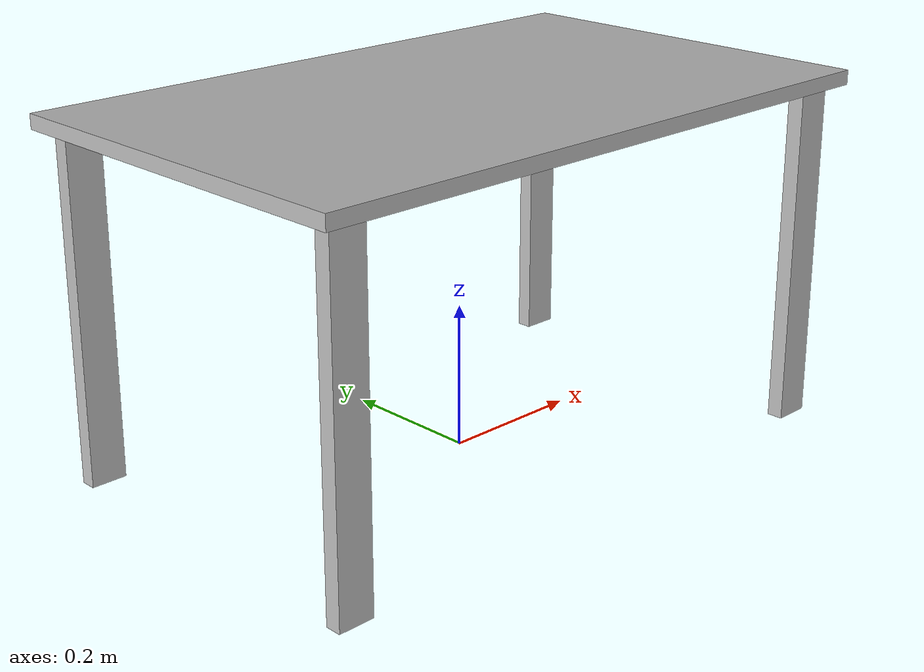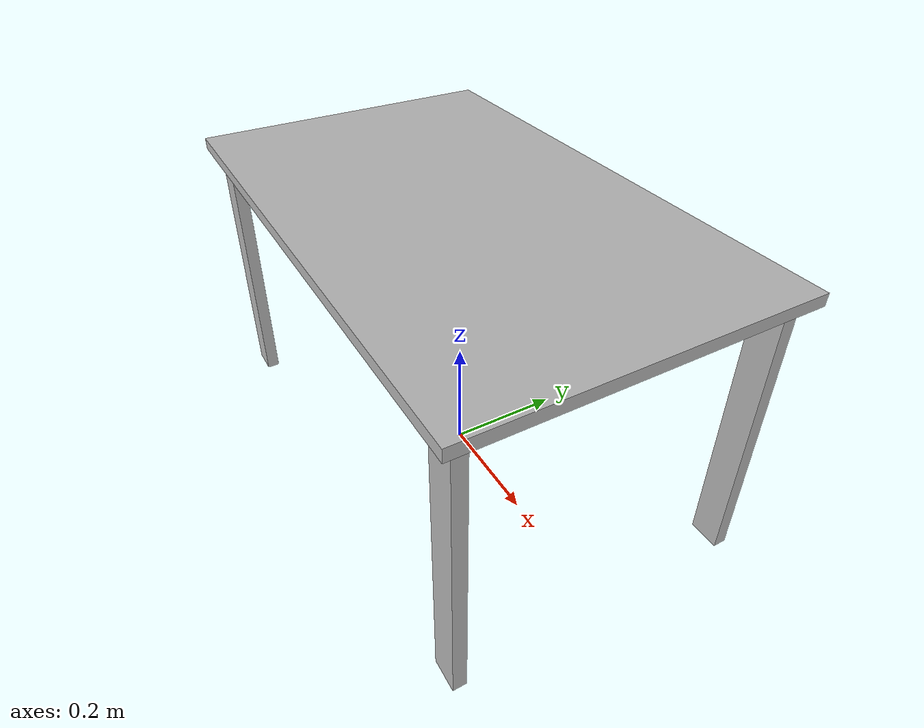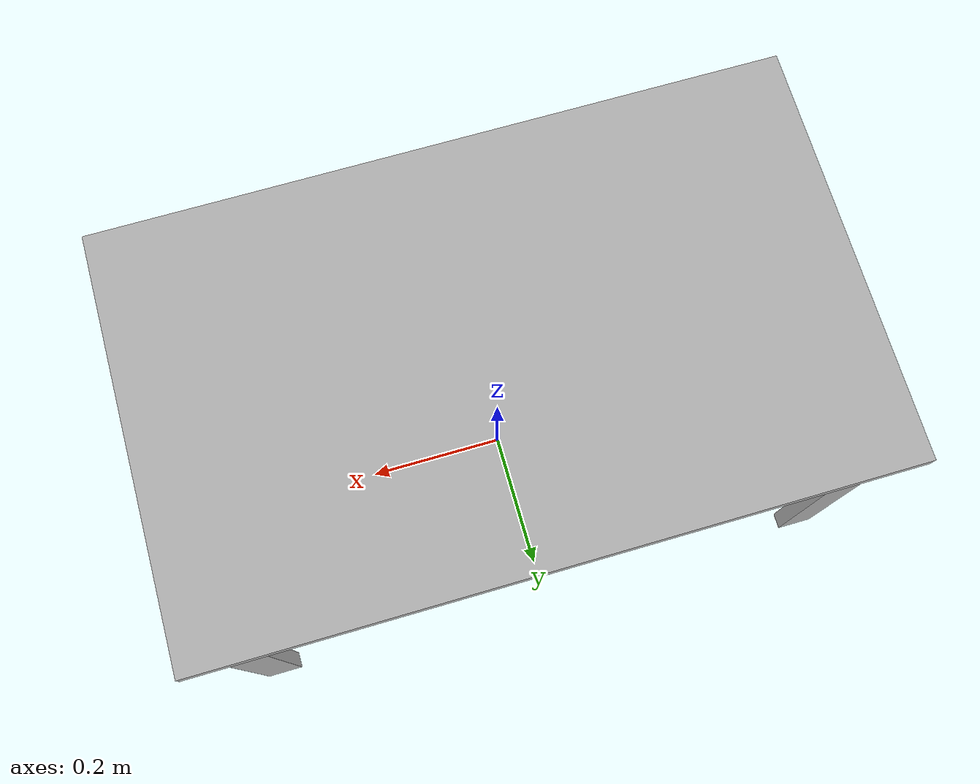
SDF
<?xml version="1.0" ?>
<sdf version="1.6">
  <model name="rwc2022/salon_table">
    <static>true</static>
    <link name="1_link">
      <collision name="1_col">
        <geometry>
          <box>
            <size>0.9 0.55 0.02</size>
          </box>
        </geometry>
      </collision>
      <visual name="1_vis">
        <geometry>
          <box>
            <size>0.9 0.55 0.02</size>
          </box>
        </geometry>
      </visual>
      <pose>0.0 0.0 0.48 0 0 0</pose>
    </link>
    <link name="2_link">
      <collision name="2_col">
        <geometry>
          <box>
            <size>0.05 0.022 0.47</size>
          </box>
        </geometry>
      </collision>
      <visual name="2_vis">
        <geometry>
          <box>
            <size>0.05 0.022 0.47</size>
          </box>
        </geometry>
      </visual>
      <pose>0.405 0.244 0.235 0 0 0</pose>
    </link>
    <link name="3_link">
      <collision name="3_col">
        <geometry>
          <box>
            <size>0.05 0.022 0.47</size>
          </box>
        </geometry>
      </collision>
      <visual name="3_vis">
        <geometry>
          <box>
            <size>0.05 0.022 0.47</size>
          </box>
        </geometry>
      </visual>
      <pose>-0.405 0.244 0.235 0 0 0</pose>
    </link>
    <link name="4_link">
      <collision name="4_col">
        <geometry>
          <box>
            <size>0.05 0.022 0.47</size>
          </box>
        </geometry>
      </collision>
      <visual name="4_vis">
        <geometry>
          <box>
            <size>0.05 0.022 0.47</size>
          </box>
        </geometry>
      </visual>
      <pose>0.405 -0.244 0.235 0 0 0</pose>
    </link>
    <link name="5_link">
      <collision name="5_col">
        <geometry>
          <box>
            <size>0.05 0.022 0.47</size>
          </box>
        </geometry>
      </collision>
      <visual name="5_vis">
        <geometry>
          <box>
            <size>0.05 0.022 0.47</size>
          </box>
        </geometry>
      </visual>
      <pose>-0.405 -0.244 0.235 0 0 0</pose>
    </link>
    <link name="on_top_of">
      <virtual_volume name="on_top_of_vv">
        <geometry>
          <box>
            <size>0.88 0.49 0.25</size>
          </box>
        </geometry>
        <pose>0.0 0.0 0.635 0 0 0</pose>
      </virtual_volume>
    </link>
    <link name="in_front_of">
      <virtual_volume name="in_front_of_vv">
        <geometry>
          <box>
            <size>0.35 0.2 0.01</size>
          </box>
        </geometry>
        <pose>0 0.775 0.005 0 0 0</pose>
      </virtual_volume>
    </link>
  </model>
</sdf>
